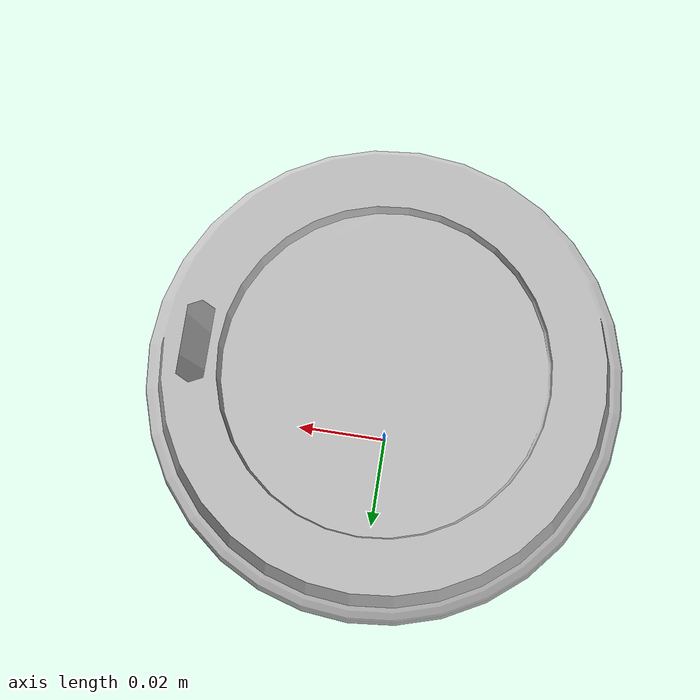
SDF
<?xml version="1.0" ?>
<sdf version='1.4'>
  <model name="coffee_cup">
      <static>0</static>
      <link name='link'>
        <inertial>
          <!-- Set to have displaced inertia to improve stability when falling-->
          <pose>0.000000 0.000000 0.0 0.000000 0.000000 0.000000</pose>
          <mass>0.243</mass>
          <inertia>
            <ixx>0.0003000748275</ixx>
            <ixy>0.000000</ixy>
            <ixz>0.000000</ixz>
            <iyy>0.0003000748275</iyy>
            <iyz>0.000000</iyz>
            <izz>0.000134730135</izz>
          </inertia>
        </inertial>
        <collision name='collision'>
          <geometry>
            <mesh>
              <uri>model://coffee_cup/meshes/coffee_cup_v2_collision.stl</uri>
              <scale>1 1 1</scale>
            </mesh>
          </geometry>
          <surface>
            <friction>
              <ode>
                <mu>30.0</mu>
                <mu2>30.0</mu2>
              </ode>
            </friction>
            <contact>
              <ode>
                <kp>1000000.0</kp>
                <kd>1000000.0</kd>
                <max_vel>1.0</max_vel>
                <min_depth>0.002</min_depth>
              </ode>
            </contact>
          </surface>
        </collision>
        <visual name='visual'>
          <geometry>
            <mesh>
              <uri>model://coffee_cup/meshes/coffee_cup.dae</uri>
              <scale>1 1 1</scale>
            </mesh>
          </geometry>

        </visual>
        <velocity_decay>
          <linear>0.000000</linear>
          <angular>0.000000</angular>
        </velocity_decay>
        <self_collide>0</self_collide>
        <kinematic>0</kinematic>
        <gravity>1</gravity>
      </link>
  </model>
</sdf>
